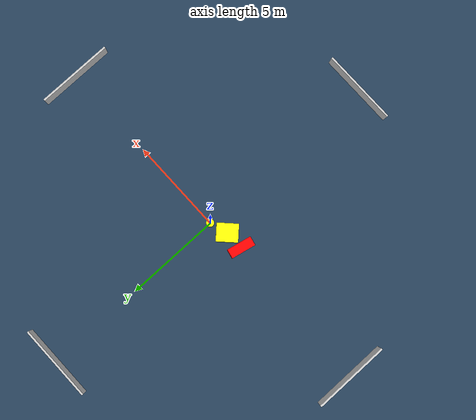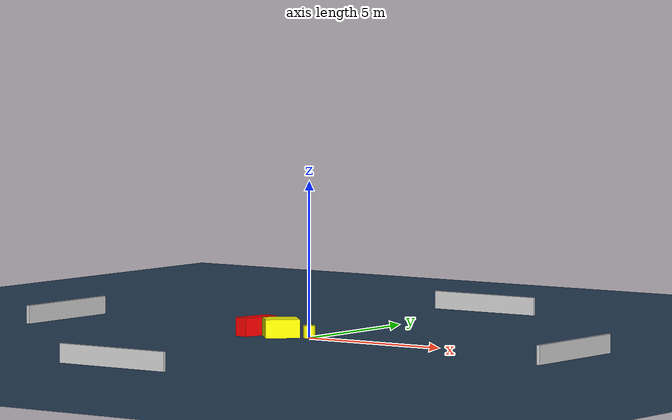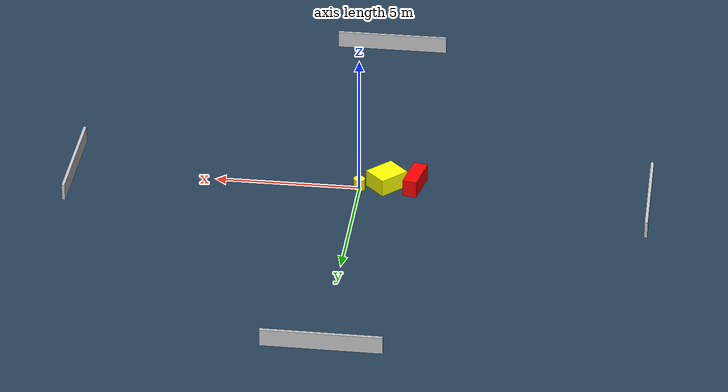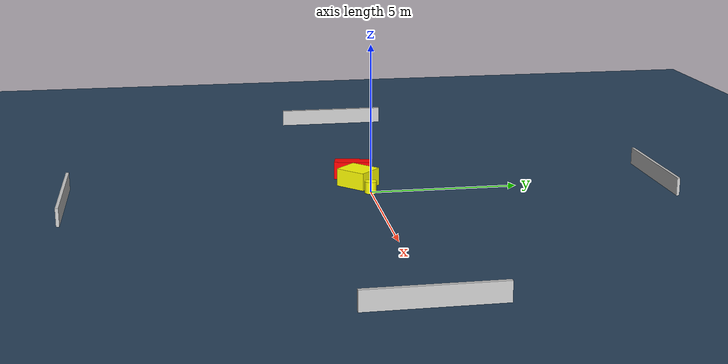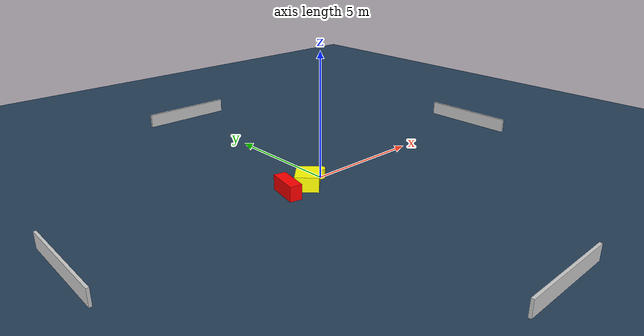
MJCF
<?xml version="1.0" ?>
<mujoco model="generated_environment">
  <option timestep="0.01" integrator="RK4" cone="elliptic"/>
  <default>
    <geom density="1"/>
  </default>
  <asset>
    <texture builtin="gradient" height="3072" name="skybox" rgb1="0.3 0.5 0.7" rgb2="0 0 0" type="skybox" width="512"/>
    <texture builtin="checker" height="300" name="groundplane" rgb1="0.2 0.3 0.4" rgb2="0.1 0.2 0.3" type="2d" width="300"/>
    <material name="groundplane" reflectance="0.2" texrepeat="5 5" texture="groundplane"/>
  </asset>
  <worldbody>
    <light dir="0 0 -1" directional="true" pos="0 0 1.5"/>
    <geom condim="3" friction="0.5 0.005 0.001" material="groundplane" name="floor" pos="0 0 0" size="0 0 0.05" type="plane"/>
    <body name="walls">
      <geom name="wall_1" condim="4" pos="-10.0 0.0 0.3" rgba="0.800000011920929 0.800000011920929 0.800000011920929 1.0" size="0.05 2.0 0.3" type="box"/>
      <geom name="wall_2" condim="4" pos="10.0 0.0 0.3" rgba="0.800000011920929 0.800000011920929 0.800000011920929 1.0" size="0.05 2.0 0.3" type="box"/>
      <geom name="wall_3" condim="4" pos="0.0 -10.0 0.3" rgba="0.800000011920929 0.800000011920929 0.800000011920929 1.0" size="2.0 0.05 0.3" type="box"/>
      <geom name="wall_4" condim="4" pos="0.0 10.0 0.3" rgba="0.800000011920929 0.800000011920929 0.800000011920929 1.0" size="2.0 0.05 0.3" type="box"/>
    </body>
    <body name="robot">
      <joint name="joint_x" type="slide" pos="0 0 0" axis="1 0 0"/>
      <joint name="joint_y" type="slide" pos="0 0 0" axis="0 1 0"/>
      <geom name="robot" type="cylinder" pos="0.0 0.0 0.2" size="0.2 0.2 0.0" mass="5.0" friction="1.0 0.005 0.0001" condim="4" rgba="1.0 1.0 0.0 1.0"/>
    </body>
    <body name="obstacle_1_movable">
      <geom name="obstacle_1_movable" condim="4" pos="-0.9196251790108708 -0.28703868776019537 0.3" euler="0 0 134.53757160540457" friction="0.0 0.005 0.001" rgba="1.0 1.0 0.0 1.0" size="0.46061500310979125 0.5486084099663702 0.3" type="box" mass="0.1"/>
      <joint type="free"/>
    </body>
    <body name="obstacle_2_static">
      <geom name="obstacle_2_static" condim="4" pos="-1.9072624948405725 -0.30206853061789113 0.3" euler="0 0 258.0405757308649" friction="0.0 0.005 0.001" rgba="1.0 0.0 0.0 1.0" size="0.6458043487331304 0.24556200914047552 0.3" type="box"/>
    </body>
  </worldbody>
  <actuator>
    <motor name="actuator_x" joint="joint_x" gear="1" ctrlrange="-1 1"/>
    <motor name="actuator_y" joint="joint_y" gear="1" ctrlrange="-1 1"/>
  </actuator>
</mujoco>
